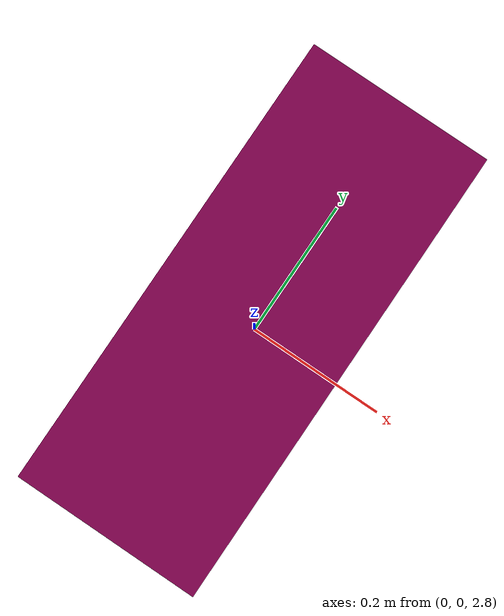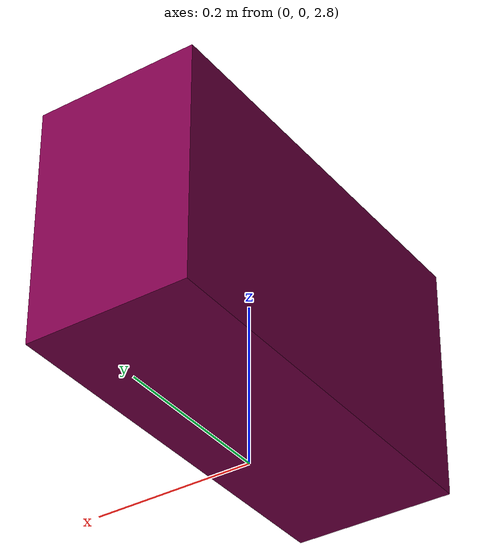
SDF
<?xml version='1.0'?>
<sdf version='1.4'>
  <model name="aerial_camera">
    <pose>0 0 3 0 1.57 0</pose>
    <static>true</static>

    <link name="camera">
      <collision name="camera">
        <geometry>
          <box><size>0.3 0.5 0.2</size></box>
        </geometry>
      </collision>

      <visual name="camera">
          <geometry>
            <box><size>0.3 0.5 0.2</size></box>
          </geometry>

          <material>
            <diffuse>0.5 0 0.3 1</diffuse>
          </material>
      </visual>
      <sensor type="camera" name="camera1">
      <update_rate>30.0</update_rate>
      <camera name="head">
        <horizontal_fov>1.3962634</horizontal_fov>
        <image>
          <width>800</width>
          <height>800</height>
          <format>R8G8B8</format>
        </image>
        <clip>
          <near>0.02</near>
          <far>300</far>
        </clip>
        <noise>
          <type>gaussian</type>
          <!-- Noise is sampled independently per pixel on each frame.
               That pixel's noise value is added to each of its color
               channels, which at that point lie in the range [0,1]. -->
          <mean>0.0</mean>
          <stddev>0.007</stddev>
        </noise>
      </camera>
      <plugin name="camera_controller" filename="libgazebo_ros_camera.so">
        <alwaysOn>true</alwaysOn>
        <updateRate>0.0</updateRate>
        <cameraName>aerial_camera/camera1</cameraName>
        <imageTopicName>image_raw</imageTopicName>
        <cameraInfoTopicName>camera_info</cameraInfoTopicName>
        <frameName>camera_link</frameName>
        <hackBaseline>0.07</hackBaseline>
        <distortionK1>0.0</distortionK1>
        <distortionK2>0.0</distortionK2>
        <distortionK3>0.0</distortionK3>
        <distortionT1>0.0</distortionT1>
        <distortionT2>0.0</distortionT2>
      </plugin>
    </sensor>
    </link>
  </model>
</sdf>
